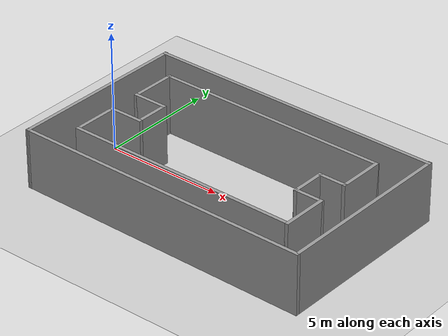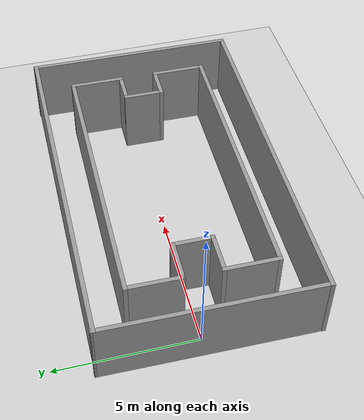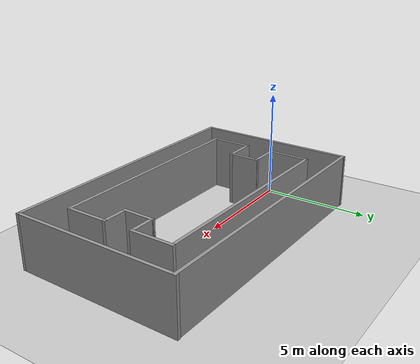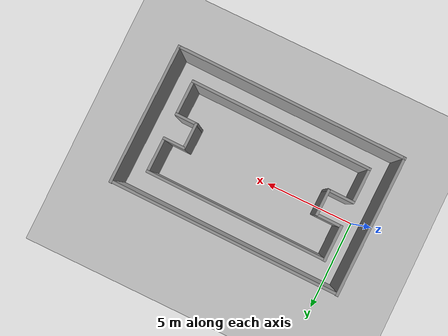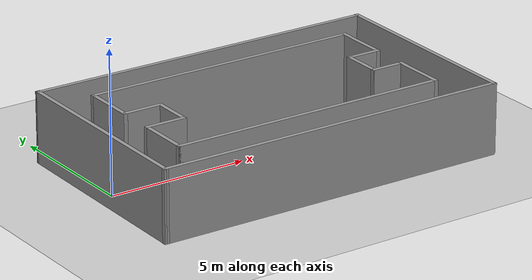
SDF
<sdf version="1.7">
 <world name="default">
  <light name="sun" type="directional">
   <pose>0 0 10 0 -0 0</pose>
   <diffuse>0.8 0.8 0.8 1</diffuse>
   <specular>0.2 0.2 0.2 1</specular>
   <attenuation>
    <range>1000</range>
    <constant>0.9</constant>
    <linear>0.01</linear>
    <quadratic>0.001</quadratic>
   </attenuation>
   <direction>-0.5 0.1 -0.9</direction>
   <spot><inner_angle>0</inner_angle><outer_angle>0</outer_angle><falloff>0</falloff></spot>
  </light>
  <model name="ground_plane">
   <static>1</static>
   <link name="link">
    <collision name="collision">
     <geometry><plane><normal>0 0 1</normal><size>100 100</size></plane></geometry>
     <surface><friction><ode><mu>100</mu><mu2>50</mu2></ode></friction></surface>
    </collision>
    <visual name="visual">
     <cast_shadows>0</cast_shadows>
     <geometry><plane><normal>0 0 1</normal><size>100 100</size></plane></geometry>
     <material>
      <script><uri>file://media/materials/scripts/gazebo.material</uri><name>Gazebo/Grey</name></script>
     </material>
    </visual>
   </link>
  </model>
  <gravity>0 0 -9.8</gravity>
  <magnetic_field>6e-06 2.3e-05 -4.2e-05</magnetic_field>
  <atmosphere type="adiabatic"/>
  <physics type="ode">
   <max_step_size>0.001</max_step_size>
   <real_time_factor>1</real_time_factor>
   <real_time_update_rate>1000</real_time_update_rate>
  </physics>
  <scene><ambient>0.4 0.4 0.4 1</ambient><background>0.7 0.7 0.7 1</background><shadows>1</shadows></scene>
  <audio><device>default</device></audio>
  <spherical_coordinates>
   <surface_model>EARTH_WGS84</surface_model>
   <latitude_deg>0</latitude_deg>
   <longitude_deg>0</longitude_deg>
   <elevation>0</elevation>
   <heading_deg>0</heading_deg>
  </spherical_coordinates>
  <model name="room3">
   <pose>5.76128 -0.28802 0 0 0 -0.013233</pose>
   <link name="Wall_10">
    <collision name="Wall_10_Collision">
     <geometry><box><size>1.5 0.15 2.5</size></box></geometry>
     <pose>0 0 1.25 0 -0 0</pose>
    </collision>
    <visual name="Wall_10_Visual">
     <pose>0 0 1.25 0 -0 0</pose>
     <geometry><box><size>1.5 0.15 2.5</size></box></geometry>
     <material>
      <script><uri>file://media/materials/scripts/gazebo.material</uri><name>Gazebo/Grey</name></script>
      <ambient>1 1 1 1</ambient>
     </material>
     <meta><layer>0</layer></meta>
    </visual>
    <pose>3.77849 -0.004477 0 0 -0 1.5708</pose>
   </link>
   <link name="Wall_11">
    <collision name="Wall_11_Collision">
     <geometry><box><size>1.25 0.15 2.5</size></box></geometry>
     <pose>0 0 1.25 0 -0 0</pose>
    </collision>
    <visual name="Wall_11_Visual">
     <pose>0 0 1.25 0 -0 0</pose>
     <geometry><box><size>1.25 0.15 2.5</size></box></geometry>
     <material>
      <script><uri>file://media/materials/scripts/gazebo.material</uri><name>Gazebo/Grey</name></script>
      <ambient>1 1 1 1</ambient>
     </material>
     <meta><layer>0</layer></meta>
    </visual>
    <pose>4.32849 0.670523 0 0 -0 0</pose>
   </link>
   <link name="Wall_12">
    <collision name="Wall_12_Collision">
     <geometry><box><size>2 0.15 2.5</size></box></geometry>
     <pose>0 0 1.25 0 -0 0</pose>
    </collision>
    <visual name="Wall_12_Visual">
     <pose>0 0 1.25 0 -0 0</pose>
     <geometry><box><size>2 0.15 2.5</size></box></geometry>
     <material>
      <script><uri>file://media/materials/scripts/gazebo.material</uri><name>Gazebo/Grey</name></script>
      <ambient>1 1 1 1</ambient>
     </material>
     <meta><layer>0</layer></meta>
    </visual>
    <pose>4.87849 1.59552 0 0 -0 1.5708</pose>
   </link>
   <link name="Wall_13">
    <collision name="Wall_13_Collision">
     <geometry><box><size>10 0.15 2.5</size></box></geometry>
     <pose>0 0 1.25 0 -0 0</pose>
    </collision>
    <visual name="Wall_13_Visual">
     <pose>0 0 1.25 0 -0 0</pose>
     <geometry><box><size>10 0.15 2.5</size></box></geometry>
     <material>
      <script><uri>file://media/materials/scripts/gazebo.material</uri><name>Gazebo/Grey</name></script>
      <ambient>1 1 1 1</ambient>
     </material>
     <meta><layer>0</layer></meta>
    </visual>
    <pose>-0.046514 2.52052 0 0 -0 3.14159</pose>
   </link>
   <link name="Wall_14">
    <collision name="Wall_14_Collision">
     <geometry><box><size>2 0.15 2.5</size></box></geometry>
     <pose>0 0 1.25 0 -0 0</pose>
    </collision>
    <visual name="Wall_14_Visual">
     <pose>0 0 1.25 0 -0 0</pose>
     <geometry><box><size>2 0.15 2.5</size></box></geometry>
     <material>
      <script><uri>file://media/materials/scripts/gazebo.material</uri><name>Gazebo/Grey</name></script>
      <ambient>1 1 1 1</ambient>
     </material>
     <meta><layer>0</layer></meta>
    </visual>
    <pose>-4.97151 1.59552 0 0 -0 -1.5708</pose>
   </link>
   <link name="Wall_15">
    <collision name="Wall_15_Collision">
     <geometry><box><size>1.5 0.15 2.5</size></box></geometry>
     <pose>0 0 1.25 0 -0 0</pose>
    </collision>
    <visual name="Wall_15_Visual">
     <pose>0 0 1.25 0 -0 0</pose>
     <geometry><box><size>1.5 0.15 2.5</size></box></geometry>
     <material>
      <script><uri>file://media/materials/scripts/gazebo.material</uri><name>Gazebo/Grey</name></script>
      <ambient>1 1 1 1</ambient>
     </material>
     <meta><layer>0</layer></meta>
    </visual>
    <pose>-4.29651 0.670523 0 0 -0 0</pose>
   </link>
   <link name="Wall_16">
    <collision name="Wall_16_Collision">
     <geometry><box><size>1.5 0.15 2.5</size></box></geometry>
     <pose>0 0 1.25 0 -0 0</pose>
    </collision>
    <visual name="Wall_16_Visual">
     <pose>0 0 1.25 0 -0 0</pose>
     <geometry><box><size>1.5 0.15 2.5</size></box></geometry>
     <material>
      <script><uri>file://media/materials/scripts/gazebo.material</uri><name>Gazebo/Grey</name></script>
      <ambient>1 1 1 1</ambient>
     </material>
     <meta><layer>0</layer></meta>
    </visual>
    <pose>-3.62151 -0.004477 0 0 -0 -1.5708</pose>
   </link>
   <link name="Wall_17">
    <collision name="Wall_17_Collision">
     <geometry><box><size>1.5 0.15 2.5</size></box></geometry>
     <pose>0 0 1.25 0 -0 0</pose>
    </collision>
    <visual name="Wall_17_Visual">
     <pose>0 0 1.25 0 -0 0</pose>
     <geometry><box><size>1.5 0.15 2.5</size></box></geometry>
     <material>
      <script><uri>file://media/materials/scripts/gazebo.material</uri><name>Gazebo/Grey</name></script>
      <ambient>1 1 1 1</ambient>
     </material>
     <meta><layer>0</layer></meta>
    </visual>
    <pose>-4.29651 -0.679477 0 0 -0 3.14159</pose>
   </link>
   <link name="Wall_18">
    <collision name="Wall_18_Collision">
     <geometry><box><size>2 0.15 2.5</size></box></geometry>
     <pose>0 0 1.25 0 -0 0</pose>
    </collision>
    <visual name="Wall_18_Visual">
     <pose>0 0 1.25 0 -0 0</pose>
     <geometry><box><size>2 0.15 2.5</size></box></geometry>
     <material>
      <script><uri>file://media/materials/scripts/gazebo.material</uri><name>Gazebo/Grey</name></script>
      <ambient>1 1 1 1</ambient>
     </material>
     <meta><layer>0</layer></meta>
    </visual>
    <pose>-4.97151 -1.60448 0 0 -0 -1.5708</pose>
   </link>
   <link name="Wall_2">
    <collision name="Wall_2_Collision">
     <geometry><box><size>7.72392 0.15 2.5</size></box></geometry>
     <pose>0 0 1.25 0 -0 0</pose>
    </collision>
    <visual name="Wall_2_Visual">
     <pose>0 0 1.25 0 -0 0</pose>
     <geometry><box><size>7.72392 0.15 2.5</size></box></geometry>
     <material>
      <script><uri>file://media/materials/scripts/gazebo.material</uri><name>Gazebo/Grey</name></script>
      <ambient>1 1 1 1</ambient>
     </material>
     <meta><layer>0</layer></meta>
    </visual>
    <pose>-6.28529 -0 0 0 -0 1.5695</pose>
   </link>
   <link name="Wall_3">
    <collision name="Wall_3_Collision">
     <geometry><box><size>12.7304 0.15 2.5</size></box></geometry>
     <pose>0 0 1.25 0 -0 0</pose>
    </collision>
    <visual name="Wall_3_Visual">
     <pose>0 0 1.25 0 -0 0</pose>
     <geometry><box><size>12.7304 0.15 2.5</size></box></geometry>
     <material>
      <script><uri>file://media/materials/scripts/gazebo.material</uri><name>Gazebo/Grey</name></script>
      <ambient>1 1 1 1</ambient>
     </material>
     <meta><layer>0</layer></meta>
    </visual>
    <pose>0.009807 3.76087 0 0 -0 0</pose>
   </link>
   <link name="Wall_4">
    <collision name="Wall_4_Collision">
     <geometry><box><size>7.72391 0.15 2.5</size></box></geometry>
     <pose>0 0 1.25 0 -0 0</pose>
    </collision>
    <visual name="Wall_4_Visual">
     <pose>0 0 1.25 0 -0 0</pose>
     <geometry><box><size>7.72391 0.15 2.5</size></box></geometry>
     <material>
      <script><uri>file://media/materials/scripts/gazebo.material</uri><name>Gazebo/Grey</name></script>
      <ambient>1 1 1 1</ambient>
     </material>
     <meta><layer>0</layer></meta>
    </visual>
    <pose>6.3 -0 0 0 -0 -1.5708</pose>
   </link>
   <link name="Wall_5">
    <collision name="Wall_5_Collision">
     <geometry><box><size>12.75 0.15 2.5</size></box></geometry>
     <pose>0 0 1.25 0 -0 0</pose>
    </collision>
    <visual name="Wall_5_Visual">
     <pose>0 0 1.25 0 -0 0</pose>
     <geometry><box><size>12.75 0.15 2.5</size></box></geometry>
     <material>
      <script><uri>file://media/materials/scripts/gazebo.material</uri><name>Gazebo/Grey</name></script>
      <ambient>1 1 1 1</ambient>
     </material>
     <meta><layer>0</layer></meta>
    </visual>
    <pose>-0 -3.78696 0 0 -0 3.14159</pose>
   </link>
   <link name="Wall_7">
    <collision name="Wall_7_Collision">
     <geometry><box><size>10 0.15 2.5</size></box></geometry>
     <pose>0 0 1.25 0 -0 0</pose>
    </collision>
    <visual name="Wall_7_Visual">
     <pose>0 0 1.25 0 -0 0</pose>
     <geometry><box><size>10 0.15 2.5</size></box></geometry>
     <material>
      <script><uri>file://media/materials/scripts/gazebo.material</uri><name>Gazebo/Grey</name></script>
      <ambient>1 1 1 1</ambient>
     </material>
     <meta><layer>0</layer></meta>
    </visual>
    <pose>-0.046514 -2.52948 0 0 -0 0</pose>
   </link>
   <link name="Wall_8">
    <collision name="Wall_8_Collision">
     <geometry><box><size>2 0.15 2.5</size></box></geometry>
     <pose>0 0 1.25 0 -0 0</pose>
    </collision>
    <visual name="Wall_8_Visual">
     <pose>0 0 1.25 0 -0 0</pose>
     <geometry><box><size>2 0.15 2.5</size></box></geometry>
     <material>
      <script><uri>file://media/materials/scripts/gazebo.material</uri><name>Gazebo/Grey</name></script>
      <ambient>1 1 1 1</ambient>
     </material>
     <meta><layer>0</layer></meta>
    </visual>
    <pose>4.87849 -1.60448 0 0 -0 1.5708</pose>
   </link>
   <link name="Wall_9">
    <collision name="Wall_9_Collision">
     <geometry><box><size>1.25 0.15 2.5</size></box></geometry>
     <pose>0 0 1.25 0 -0 0</pose>
    </collision>
    <visual name="Wall_9_Visual">
     <pose>0 0 1.25 0 -0 0</pose>
     <geometry><box><size>1.25 0.15 2.5</size></box></geometry>
     <material>
      <script><uri>file://media/materials/scripts/gazebo.material</uri><name>Gazebo/Grey</name></script>
      <ambient>1 1 1 1</ambient>
     </material>
     <meta><layer>0</layer></meta>
    </visual>
    <pose>4.32849 -0.679477 0 0 -0 3.14159</pose>
   </link>
   <static>1</static>
  </model>
 </world>
</sdf>
